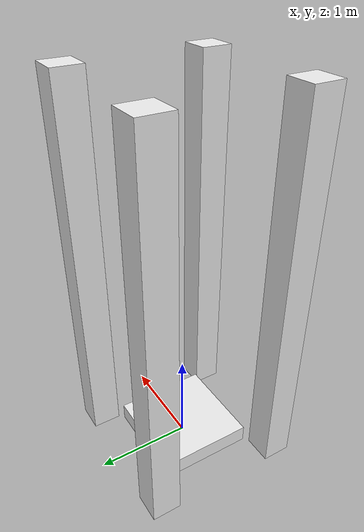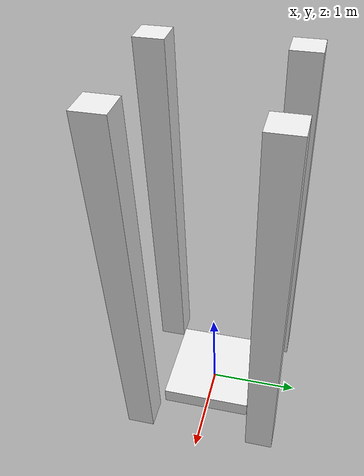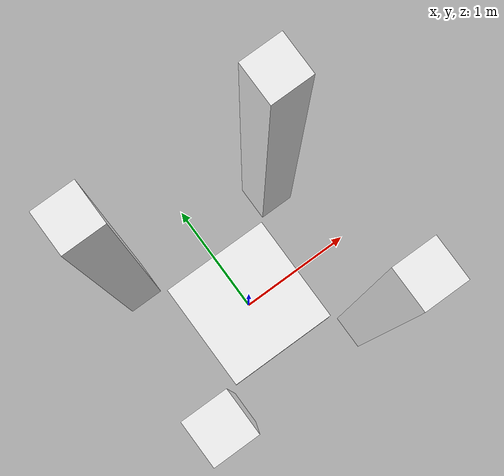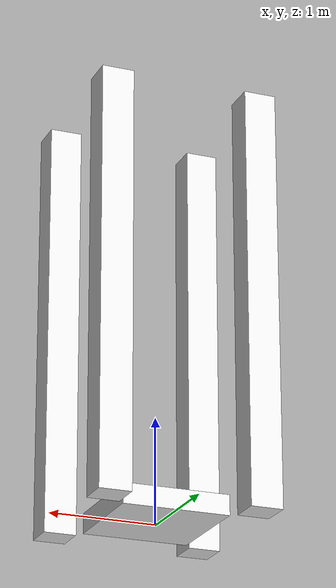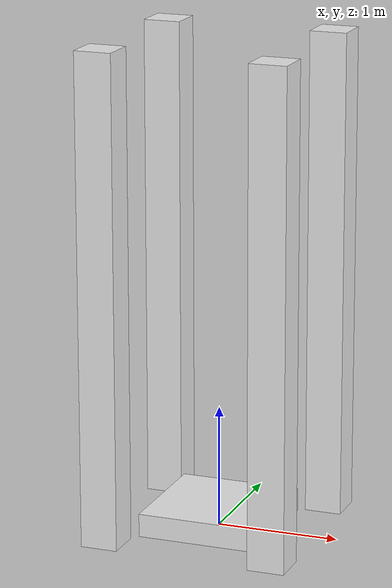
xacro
<?xml version="1.0"?>
<robot name="obstacles" xmlns:xacro="http://www.ros.org/wiki/xacro">

  <!-- Import shared components -->
  <xacro:include filename="$(find robot_sim)/urdf/shared.xacro" />

  <!-- Base link -->
  <link name="world"/>

  <!-- Table -->
  <joint name="joint_table" type="fixed">
    <parent link="world"/>
    <child link="table"/>
    <origin xyz="0 0 0.1" rpy="0 0 0"/>
  </joint>

  <link name="table">
    <collision>
      <origin xyz="0 0 0" rpy="0 0 0"/>
      <geometry>
	      <box size="1 1 0.19" />
      </geometry>
    </collision>

    <visual>
      <origin xyz="0 0 0" rpy="0 0 0"/>
      <geometry>
	      <box size="1 1 0.19" />
      </geometry>
      <material name="white"/>
    </visual>

    <inertial>
      <origin xyz="0 0 0" rpy="0 0 0"/>
      <mass value="1.0"/>
      <inertia
        ixx="1.0" ixy="0.0" ixz="0.0"
        iyy="1.0" iyz="0.0"
        izz="1.0"/>
    </inertial>
  </link>

  <gazebo reference="table">
    <material>Gazebo/White</material>
  </gazebo>

  <!-- Obj 1 -->
  <joint name="obj1_joint" type="fixed">
    <parent link="world"/>
    <child link="obj1"/>
    <origin xyz="0.701 0.701 2" rpy="0 0 0"/>
  </joint>

  <link name="obj1">
    <collision>
      <origin xyz="0 0 0" rpy="0 0 0"/>
      <geometry>
	      <box size="0.302 0.302 4"/>
      </geometry>
    </collision>

    <visual>
      <origin xyz="0 0 0" rpy="0 0 0"/>
      <geometry>
	      <box size="0.302 0.302 4"/>
      </geometry>
      <material name="white"/>
    </visual>

    <inertial>
      <origin xyz="0 0 0" rpy="0 0 0"/>
      <mass value="1.0"/>
      <inertia
        ixx="1.0" ixy="0.0" ixz="0.0"
        iyy="1.0" iyz="0.0"
        izz="1.0"/>
    </inertial>
  </link>

  <gazebo reference="obj1">
    <material>Gazebo/White</material>
  </gazebo>

  <!-- Obj 2 -->
  <joint name="obj2_joint" type="fixed">
    <parent link="world"/>
    <child link="obj2"/>
    <origin xyz="0.701 -0.701 2" rpy="0 0 0"/>
  </joint>

  <link name="obj2">
    <collision>
      <origin xyz="0 0 0" rpy="0 0 0"/>
      <geometry>
	      <box size="0.302 0.302 4"/>
      </geometry>
    </collision>

    <visual>
      <origin xyz="0 0 0" rpy="0 0 0"/>
      <geometry>
	      <box size="0.302 0.302 4"/>
      </geometry>
      <material name="white"/>
    </visual>

    <inertial>
      <origin xyz="0 0 0" rpy="0 0 0"/>
      <mass value="1.0"/>
      <inertia
        ixx="1.0" ixy="0.0" ixz="0.0"
        iyy="1.0" iyz="0.0"
        izz="1.0"/>
    </inertial>
  </link>

  <gazebo reference="obj2">
    <material>Gazebo/White</material>
  </gazebo>

  <!-- Obj 3 -->
  <joint name="obj3_joint" type="fixed">
    <parent link="world"/>
    <child link="obj3"/>
    <origin xyz="-0.701 0.701 2" rpy="0 0 0"/>
  </joint>

  <link name="obj3">
    <collision>
      <origin xyz="0 0 0" rpy="0 0 0"/>
      <geometry>
	      <box size="0.302 0.302 4"/>
      </geometry>
    </collision>

    <visual>
      <origin xyz="0 0 0" rpy="0 0 0"/>
      <geometry>
	      <box size="0.302 0.302 4"/>
      </geometry>
      <material name="white"/>
    </visual>

    <inertial>
      <origin xyz="0 0 0" rpy="0 0 0"/>
      <mass value="1.0"/>
      <inertia
        ixx="1.0" ixy="0.0" ixz="0.0"
        iyy="1.0" iyz="0.0"
        izz="1.0"/>
    </inertial>
  </link>

  <gazebo reference="obj3">
    <material>Gazebo/White</material>
  </gazebo>

  <!-- Obj 4 -->
  <joint name="obj4_joint" type="fixed">
    <parent link="world"/>
    <child link="obj4"/>
    <origin xyz="-0.701 -0.701 2" rpy="0 0 0"/>
  </joint>

  <link name="obj4">
    <collision>
      <origin xyz="0 0 0" rpy="0 0 0"/>
      <geometry>
	      <box size="0.302 0.302 4"/>
      </geometry>
    </collision>

    <visual>
      <origin xyz="0 0 0" rpy="0 0 0"/>
      <geometry>
	      <box size="0.302 0.302 4"/>
      </geometry>
      <material name="white"/>
    </visual>

    <inertial>
      <origin xyz="0 0 0" rpy="0 0 0"/>
      <mass value="1.0"/>
      <inertia
        ixx="1.0" ixy="0.0" ixz="0.0"
        iyy="1.0" iyz="0.0"
        izz="1.0"/>
    </inertial>
  </link>

  <gazebo reference="obj4">
    <material>Gazebo/White</material>
  </gazebo>

  <!-- Obj 5 -->

  <!-- Obj 6 -->

  <!-- Obj 7 -->

  <!-- Obj 8 -->

</robot>
